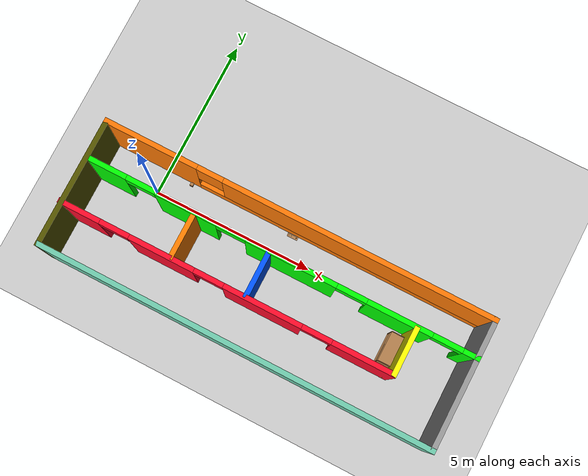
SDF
<sdf version="1.6">
 <world name="default">
  <light name="sun" type="directional">
   <pose>0 0 10 0 -0 0</pose>
   <diffuse>0.8 0.8 0.8 1</diffuse>
   <specular>0.2 0.2 0.2 1</specular>
   <attenuation>
    <range>1000</range>
    <constant>0.9</constant>
    <linear>0.01</linear>
    <quadratic>0.001</quadratic>
   </attenuation>
   <direction>-0.5 0.1 -0.9</direction>
  </light>
  <model name="ground_plane">
   <static>1</static>
   <link name="link">
    <collision name="collision">
     <geometry><plane><normal>0 0 1</normal><size>100 100</size></plane></geometry>
     <surface><friction><ode><mu>100</mu><mu2>50</mu2></ode></friction></surface>
    </collision>
    <visual name="visual">
     <cast_shadows>0</cast_shadows>
     <geometry><plane><normal>0 0 1</normal><size>100 100</size></plane></geometry>
     <material>
      <script><uri>file://media/materials/scripts/gazebo.material</uri><name>Gazebo/Grey</name></script>
     </material>
    </visual>
   </link>
  </model>
  <gravity>0 0 -9.8</gravity>
  <magnetic_field>6e-06 2.3e-05 -4.2e-05</magnetic_field>
  <atmosphere type="adiabatic"/>
  <physics name="default_physics" default="0" type="ode">
   <max_step_size>0.001</max_step_size>
   <real_time_factor>1</real_time_factor>
   <real_time_update_rate>1000</real_time_update_rate>
  </physics>
  <scene><ambient>0.4 0.4 0.4 1</ambient><background>0.7 0.7 0.7 1</background><shadows>1</shadows></scene>
  <spherical_coordinates>
   <surface_model>EARTH_WGS84</surface_model>
   <latitude_deg>0</latitude_deg>
   <longitude_deg>0</longitude_deg>
   <elevation>0</elevation>
   <heading_deg>0</heading_deg>
  </spherical_coordinates>
  <model name="Project4c">
   <pose>4.16008 -1.12488 0 0 -0 0</pose>
   <link name="Wall_0">
    <collision name="Wall_0_Collision">
     <geometry><box><size>4 0.15 2.5</size></box></geometry>
     <pose>0 0 1.25 0 -0 0</pose>
    </collision>
    <visual name="Wall_0_Visual">
     <pose>0 0 1.25 0 -0 0</pose>
     <geometry><box><size>4 0.15 2.5</size></box></geometry>
     <material>
      <script><uri>file://media/materials/scripts/gazebo.material</uri><name>Gazebo/Grey</name></script>
      <ambient>0.333333 0.333333 0 1</ambient>
     </material>
     <meta><layer>0</layer></meta>
    </visual>
    <pose>-5.91325 0 0 0 -0 1.5708</pose>
   </link>
   <link name="Wall_1">
    <pose>0.01175 1.925 0 0 -0 0</pose>
    <visual name="Wall_1_Visual_0">
     <pose>-4.55275 0 1.25 0 -0 0</pose>
     <geometry><box><size>2.8945 0.15 2.5</size></box></geometry>
     <material>
      <script><uri>file://media/materials/scripts/gazebo.material</uri><name>Gazebo/Grey</name></script>
      <ambient>0.996078 0.47451 0.0196078 1</ambient>
     </material>
     <meta><layer>0</layer></meta>
    </visual>
    <collision name="Wall_1_Collision_0">
     <geometry><box><size>2.8945 0.15 2.5</size></box></geometry>
     <pose>-4.55275 0 1.25 0 -0 0</pose>
    </collision>
    <visual name="Wall_1_Visual_1">
     <pose>1.44725 0 0.25 0 -0 0</pose>
     <geometry><box><size>9.1055 0.15 0.5</size></box></geometry>
     <material>
      <script><uri>file://media/materials/scripts/gazebo.material</uri><name>Gazebo/Grey</name></script>
      <ambient>0.996078 0.47451 0.0196078 1</ambient>
     </material>
     <meta><layer>0</layer></meta>
    </visual>
    <collision name="Wall_1_Collision_1">
     <geometry><box><size>9.1055 0.15 0.5</size></box></geometry>
     <pose>1.44725 0 0.25 0 -0 0</pose>
    </collision>
    <visual name="Wall_1_Visual_2">
     <pose>1.84725 0 1.5 0 -0 0</pose>
     <geometry><box><size>8.3055 0.15 2</size></box></geometry>
     <material>
      <script><uri>file://media/materials/scripts/gazebo.material</uri><name>Gazebo/Grey</name></script>
      <ambient>0.996078 0.47451 0.0196078 1</ambient>
     </material>
     <meta><layer>0</layer></meta>
    </visual>
    <collision name="Wall_1_Collision_2">
     <geometry><box><size>8.3055 0.15 2</size></box></geometry>
     <pose>1.84725 0 1.5 0 -0 0</pose>
    </collision>
    <visual name="Wall_1_Visual_3">
     <pose>-2.7055 0 1.9 0 -0 0</pose>
     <geometry><box><size>0.8 0.15 1.2</size></box></geometry>
     <material>
      <script><uri>file://media/materials/scripts/gazebo.material</uri><name>Gazebo/Grey</name></script>
      <ambient>0.996078 0.47451 0.0196078 1</ambient>
     </material>
     <meta><layer>0</layer></meta>
    </visual>
    <collision name="Wall_1_Collision_3">
     <geometry><box><size>0.8 0.15 1.2</size></box></geometry>
     <pose>-2.7055 0 1.9 0 -0 0</pose>
    </collision>
   </link>
   <link name="Wall_10">
    <collision name="Wall_10_Collision">
     <geometry><box><size>1.5 0.15 2.5</size></box></geometry>
     <pose>0 0 1.25 0 -0 0</pose>
    </collision>
    <visual name="Wall_10_Visual">
     <pose>0 0 1.25 0 -0 0</pose>
     <geometry><box><size>1.5 0.15 2.5</size></box></geometry>
     <material>
      <script><uri>file://media/materials/scripts/gazebo.material</uri><name>Gazebo/Grey</name></script>
      <ambient>1 0.501961 0 1</ambient>
     </material>
     <meta><layer>0</layer></meta>
    </visual>
    <pose>-2.56725 0.0995 0 0 0 -1.5708</pose>
   </link>
   <link name="Wall_12">
    <collision name="Wall_12_Collision">
     <geometry><box><size>1.5 0.15 2.5</size></box></geometry>
     <pose>0 0 1.25 0 -0 0</pose>
    </collision>
    <visual name="Wall_12_Visual">
     <pose>0 0 1.25 0 -0 0</pose>
     <geometry><box><size>1.5 0.15 2.5</size></box></geometry>
     <material>
      <script><uri>file://media/materials/scripts/gazebo.material</uri><name>Gazebo/Grey</name></script>
      <ambient>0 0.333333 1 1</ambient>
     </material>
     <meta><layer>0</layer></meta>
    </visual>
    <pose>-0.27875 0.111 0 0 0 -1.5708</pose>
   </link>
   <link name="Wall_2">
    <collision name="Wall_2_Collision">
     <geometry><box><size>4 0.15 2.5</size></box></geometry>
     <pose>0 0 1.25 0 -0 0</pose>
    </collision>
    <visual name="Wall_2_Visual">
     <pose>0 0 1.25 0 -0 0</pose>
     <geometry><box><size>4 0.15 2.5</size></box></geometry>
     <material>
      <script><uri>file://media/materials/scripts/gazebo.material</uri><name>Gazebo/Grey</name></script>
      <ambient>0 0 0 1</ambient>
     </material>
     <meta><layer>0</layer></meta>
    </visual>
    <pose>5.93675 0 0 0 0 -1.5708</pose>
   </link>
   <link name="Wall_3">
    <collision name="Wall_3_Collision">
     <geometry><box><size>12 0.15 2.5</size></box></geometry>
     <pose>0 0 1.25 0 -0 0</pose>
    </collision>
    <visual name="Wall_3_Visual">
     <pose>0 0 1.25 0 -0 0</pose>
     <geometry><box><size>12 0.15 2.5</size></box></geometry>
     <material>
      <script><uri>file://media/materials/scripts/gazebo.material</uri><name>Gazebo/Grey</name></script>
      <ambient>0.435294 0.796078 0.67451 1</ambient>
     </material>
     <meta><layer>0</layer></meta>
    </visual>
    <pose>0.01175 -1.925 0 0 -0 3.14159</pose>
   </link>
   <link name="Wall_5">
    <pose>0.01125 0.786 0 0 -0 0</pose>
    <visual name="Wall_5_Visual_0">
     <pose>-5.34225 0 1.25 0 -0 0</pose>
     <geometry><box><size>1.3155 0.15 2.5</size></box></geometry>
     <material>
      <script><uri>file://media/materials/scripts/gazebo.material</uri><name>Gazebo/Grey</name></script>
      <ambient>0 0.996078 0 1</ambient>
     </material>
     <meta><layer>0</layer></meta>
    </visual>
    <collision name="Wall_5_Collision_0">
     <geometry><box><size>1.3155 0.15 2.5</size></box></geometry>
     <pose>-5.34225 0 1.25 0 -0 0</pose>
    </collision>
    <visual name="Wall_5_Visual_1">
     <pose>-2.843 0 1.25 0 -0 0</pose>
     <geometry><box><size>1.883 0.15 2.5</size></box></geometry>
     <material>
      <script><uri>file://media/materials/scripts/gazebo.material</uri><name>Gazebo/Grey</name></script>
      <ambient>0 0.996078 0 1</ambient>
     </material>
     <meta><layer>0</layer></meta>
    </visual>
    <collision name="Wall_5_Collision_1">
     <geometry><box><size>1.883 0.15 2.5</size></box></geometry>
     <pose>-2.843 0 1.25 0 -0 0</pose>
    </collision>
    <visual name="Wall_5_Visual_2">
     <pose>0.377 0 1.25 0 -0 0</pose>
     <geometry><box><size>2.757 0.15 2.5</size></box></geometry>
     <material>
      <script><uri>file://media/materials/scripts/gazebo.material</uri><name>Gazebo/Grey</name></script>
      <ambient>0 0.996078 0 1</ambient>
     </material>
     <meta><layer>0</layer></meta>
    </visual>
    <collision name="Wall_5_Collision_2">
     <geometry><box><size>2.757 0.15 2.5</size></box></geometry>
     <pose>0.377 0 1.25 0 -0 0</pose>
    </collision>
    <visual name="Wall_5_Visual_3">
     <pose>3.6315 0 1.25 0 -0 0</pose>
     <geometry><box><size>1.952 0.15 2.5</size></box></geometry>
     <material>
      <script><uri>file://media/materials/scripts/gazebo.material</uri><name>Gazebo/Grey</name></script>
      <ambient>0 0.996078 0 1</ambient>
     </material>
     <meta><layer>0</layer></meta>
    </visual>
    <collision name="Wall_5_Collision_3">
     <geometry><box><size>1.952 0.15 2.5</size></box></geometry>
     <pose>3.6315 0 1.25 0 -0 0</pose>
    </collision>
    <visual name="Wall_5_Visual_4">
     <pose>5.75375 0 1.25 0 -0 0</pose>
     <geometry><box><size>0.4925 0.15 2.5</size></box></geometry>
     <material>
      <script><uri>file://media/materials/scripts/gazebo.material</uri><name>Gazebo/Grey</name></script>
      <ambient>0 0.996078 0 1</ambient>
     </material>
     <meta><layer>0</layer></meta>
    </visual>
    <collision name="Wall_5_Collision_4">
     <geometry><box><size>0.4925 0.15 2.5</size></box></geometry>
     <pose>5.75375 0 1.25 0 -0 0</pose>
    </collision>
    <visual name="Wall_5_Visual_5">
     <pose>-4.2345 0 2.25 0 -0 0</pose>
     <geometry><box><size>0.9 0.15 0.5</size></box></geometry>
     <material>
      <script><uri>file://media/materials/scripts/gazebo.material</uri><name>Gazebo/Grey</name></script>
      <ambient>0 0.996078 0 1</ambient>
     </material>
     <meta><layer>0</layer></meta>
    </visual>
    <collision name="Wall_5_Collision_5">
     <geometry><box><size>0.9 0.15 0.5</size></box></geometry>
     <pose>-4.2345 0 2.25 0 -0 0</pose>
    </collision>
    <visual name="Wall_5_Visual_6">
     <pose>-1.4515 0 2.25 0 -0 0</pose>
     <geometry><box><size>0.9 0.15 0.5</size></box></geometry>
     <material>
      <script><uri>file://media/materials/scripts/gazebo.material</uri><name>Gazebo/Grey</name></script>
      <ambient>0 0.996078 0 1</ambient>
     </material>
     <meta><layer>0</layer></meta>
    </visual>
    <collision name="Wall_5_Collision_6">
     <geometry><box><size>0.9 0.15 0.5</size></box></geometry>
     <pose>-1.4515 0 2.25 0 -0 0</pose>
    </collision>
    <visual name="Wall_5_Visual_7">
     <pose>2.2055 0 2.25 0 -0 0</pose>
     <geometry><box><size>0.9 0.15 0.5</size></box></geometry>
     <material>
      <script><uri>file://media/materials/scripts/gazebo.material</uri><name>Gazebo/Grey</name></script>
      <ambient>0 0.996078 0 1</ambient>
     </material>
     <meta><layer>0</layer></meta>
    </visual>
    <collision name="Wall_5_Collision_7">
     <geometry><box><size>0.9 0.15 0.5</size></box></geometry>
     <pose>2.2055 0 2.25 0 -0 0</pose>
    </collision>
    <visual name="Wall_5_Visual_8">
     <pose>5.0575 0 2.25 0 -0 0</pose>
     <geometry><box><size>0.9 0.15 0.5</size></box></geometry>
     <material>
      <script><uri>file://media/materials/scripts/gazebo.material</uri><name>Gazebo/Grey</name></script>
      <ambient>0 0.996078 0 1</ambient>
     </material>
     <meta><layer>0</layer></meta>
    </visual>
    <collision name="Wall_5_Collision_8">
     <geometry><box><size>0.9 0.15 0.5</size></box></geometry>
     <pose>5.0575 0 2.25 0 -0 0</pose>
    </collision>
   </link>
   <link name="Wall_7">
    <pose>-0.88675 -0.617 0 0 -0 0</pose>
    <visual name="Wall_7_Visual_0">
     <pose>-4.4845 0 1.25 0 -0 0</pose>
     <geometry><box><size>1.281 0.15 2.5</size></box></geometry>
     <material>
      <script><uri>file://media/materials/scripts/gazebo.material</uri><name>Gazebo/Grey</name></script>
      <ambient>0.996078 0.0392157 0.164706 1</ambient>
     </material>
     <meta><layer>0</layer></meta>
    </visual>
    <collision name="Wall_7_Collision_0">
     <geometry><box><size>1.281 0.15 2.5</size></box></geometry>
     <pose>-4.4845 0 1.25 0 -0 0</pose>
    </collision>
    <visual name="Wall_7_Visual_1">
     <pose>-1.95075 0 1.25 0 -0 0</pose>
     <geometry><box><size>1.9865 0.15 2.5</size></box></geometry>
     <material>
      <script><uri>file://media/materials/scripts/gazebo.material</uri><name>Gazebo/Grey</name></script>
      <ambient>0.996078 0.0392157 0.164706 1</ambient>
     </material>
     <meta><layer>0</layer></meta>
    </visual>
    <collision name="Wall_7_Collision_1">
     <geometry><box><size>1.9865 0.15 2.5</size></box></geometry>
     <pose>-1.95075 0 1.25 0 -0 0</pose>
    </collision>
    <visual name="Wall_7_Visual_2">
     <pose>1.1255 0 1.25 0 -0 0</pose>
     <geometry><box><size>2.366 0.15 2.5</size></box></geometry>
     <material>
      <script><uri>file://media/materials/scripts/gazebo.material</uri><name>Gazebo/Grey</name></script>
      <ambient>0.996078 0.0392157 0.164706 1</ambient>
     </material>
     <meta><layer>0</layer></meta>
    </visual>
    <collision name="Wall_7_Collision_2">
     <geometry><box><size>2.366 0.15 2.5</size></box></geometry>
     <pose>1.1255 0 1.25 0 -0 0</pose>
    </collision>
    <visual name="Wall_7_Visual_3">
     <pose>4.16675 0 1.25 0 -0 0</pose>
     <geometry><box><size>1.9165 0.15 2.5</size></box></geometry>
     <material>
      <script><uri>file://media/materials/scripts/gazebo.material</uri><name>Gazebo/Grey</name></script>
      <ambient>0.996078 0.0392157 0.164706 1</ambient>
     </material>
     <meta><layer>0</layer></meta>
    </visual>
    <collision name="Wall_7_Collision_3">
     <geometry><box><size>1.9165 0.15 2.5</size></box></geometry>
     <pose>4.16675 0 1.25 0 -0 0</pose>
    </collision>
    <visual name="Wall_7_Visual_4">
     <pose>-3.394 0 2.25 0 -0 0</pose>
     <geometry><box><size>0.9 0.15 0.5</size></box></geometry>
     <material>
      <script><uri>file://media/materials/scripts/gazebo.material</uri><name>Gazebo/Grey</name></script>
      <ambient>0.996078 0.0392157 0.164706 1</ambient>
     </material>
     <meta><layer>0</layer></meta>
    </visual>
    <collision name="Wall_7_Collision_4">
     <geometry><box><size>0.9 0.15 0.5</size></box></geometry>
     <pose>-3.394 0 2.25 0 -0 0</pose>
    </collision>
    <visual name="Wall_7_Visual_5">
     <pose>-0.5075 0 2.25 0 -0 0</pose>
     <geometry><box><size>0.9 0.15 0.5</size></box></geometry>
     <material>
      <script><uri>file://media/materials/scripts/gazebo.material</uri><name>Gazebo/Grey</name></script>
      <ambient>0.996078 0.0392157 0.164706 1</ambient>
     </material>
     <meta><layer>0</layer></meta>
    </visual>
    <collision name="Wall_7_Collision_5">
     <geometry><box><size>0.9 0.15 0.5</size></box></geometry>
     <pose>-0.5075 0 2.25 0 -0 0</pose>
    </collision>
    <visual name="Wall_7_Visual_6">
     <pose>2.7585 0 2.25 0 -0 0</pose>
     <geometry><box><size>0.9 0.15 0.5</size></box></geometry>
     <material>
      <script><uri>file://media/materials/scripts/gazebo.material</uri><name>Gazebo/Grey</name></script>
      <ambient>0.996078 0.0392157 0.164706 1</ambient>
     </material>
     <meta><layer>0</layer></meta>
    </visual>
    <collision name="Wall_7_Collision_6">
     <geometry><box><size>0.9 0.15 0.5</size></box></geometry>
     <pose>2.7585 0 2.25 0 -0 0</pose>
    </collision>
   </link>
   <link name="Wall_8">
    <collision name="Wall_8_Collision">
     <geometry><box><size>1.5 0.15 2.5</size></box></geometry>
     <pose>0 0 1.25 0 -0 0</pose>
    </collision>
    <visual name="Wall_8_Visual">
     <pose>0 0 1.25 0 -0 0</pose>
     <geometry><box><size>1.5 0.15 2.5</size></box></geometry>
     <material>
      <script><uri>file://media/materials/scripts/gazebo.material</uri><name>Gazebo/Grey</name></script>
      <ambient>1 1 0 1</ambient>
     </material>
     <meta><layer>0</layer></meta>
    </visual>
    <pose>4.16325 0.058 0 0 -0 1.5708</pose>
   </link>
   <static>1</static>
  </model>
  <model name="bookshelf">
   <static>1</static>
   <link name="link">
    <inertial><mass>1</mass></inertial>
    <collision name="back">
     <pose>0 0.005 0.6 0 -0 0</pose>
     <geometry><box><size>0.9 0.01 1.2</size></box></geometry>
    </collision>
    <visual name="visual1">
     <pose>0 0.005 0.6 0 -0 0</pose>
     <geometry><box><size>0.9 0.01 1.2</size></box></geometry>
     <material>
      <script><uri>file://media/materials/scripts/gazebo.material</uri><name>Gazebo/Wood</name></script>
     </material>
    </visual>
    <collision name="left_side">
     <pose>0.45 -0.195 0.6 0 -0 0</pose>
     <geometry><box><size>0.02 0.4 1.2</size></box></geometry>
    </collision>
    <visual name="visual2">
     <pose>0.45 -0.195 0.6 0 -0 0</pose>
     <geometry><box><size>0.02 0.4 1.2</size></box></geometry>
     <material>
      <script><uri>file://media/materials/scripts/gazebo.material</uri><name>Gazebo/Wood</name></script>
     </material>
    </visual>
    <collision name="right_side">
     <pose>-0.45 -0.195 0.6 0 -0 0</pose>
     <geometry><box><size>0.02 0.4 1.2</size></box></geometry>
    </collision>
    <visual name="visual3">
     <pose>-0.45 -0.195 0.6 0 -0 0</pose>
     <geometry><box><size>0.02 0.4 1.2</size></box></geometry>
     <material>
      <script><uri>file://media/materials/scripts/gazebo.material</uri><name>Gazebo/Wood</name></script>
     </material>
    </visual>
    <collision name="bottom">
     <pose>0 -0.195 0.03 0 -0 0</pose>
     <geometry><box><size>0.88 0.4 0.06</size></box></geometry>
    </collision>
    <visual name="visual4">
     <pose>0 -0.195 0.03 0 -0 0</pose>
     <geometry><box><size>0.88 0.4 0.06</size></box></geometry>
     <material>
      <script><uri>file://media/materials/scripts/gazebo.material</uri><name>Gazebo/Wood</name></script>
     </material>
    </visual>
    <collision name="top">
     <pose>0 -0.195 1.19 0 -0 0</pose>
     <geometry><box><size>0.88 0.4 0.02</size></box></geometry>
    </collision>
    <visual name="visual5">
     <pose>0 -0.195 1.19 0 -0 0</pose>
     <geometry><box><size>0.88 0.4 0.02</size></box></geometry>
     <material>
      <script><uri>file://media/materials/scripts/gazebo.material</uri><name>Gazebo/Wood</name></script>
     </material>
    </visual>
    <collision name="low_shelf">
     <pose>0 -0.195 0.43 0 -0 0</pose>
     <geometry><box><size>0.88 0.4 0.02</size></box></geometry>
    </collision>
    <visual name="visual6">
     <pose>0 -0.195 0.43 0 -0 0</pose>
     <geometry><box><size>0.88 0.4 0.02</size></box></geometry>
     <material>
      <script><uri>file://media/materials/scripts/gazebo.material</uri><name>Gazebo/Wood</name></script>
     </material>
    </visual>
    <collision name="high_shelf">
     <pose>0 -0.195 0.8 0 -0 0</pose>
     <geometry><box><size>0.88 0.4 0.02</size></box></geometry>
    </collision>
    <visual name="visual7">
     <pose>0 -0.195 0.8 0 -0 0</pose>
     <geometry><box><size>0.88 0.4 0.02</size></box></geometry>
     <material>
      <script><uri>file://media/materials/scripts/gazebo.material</uri><name>Gazebo/Wood</name></script>
     </material>
    </visual>
   </link>
   <pose>8.26226 -1.05343 0 0 0 -1.57073</pose>
  </model>
  <model name="my_ball">
   <link name="link_0">
    <inertial>
     <mass>1</mass>
     <inertia><ixx>0.1</ixx><ixy>0</ixy><ixz>0</ixz><iyy>0.1</iyy><iyz>0</iyz><izz>0.1</izz></inertia>
    </inertial>
    <visual name="visual">
     <geometry><sphere><radius>0.1</radius></sphere></geometry>
     <material>
      <lighting>1</lighting>
      <script><uri>file://media/materials/scripts/gazebo.material</uri><name>Gazebo/Grey</name></script>
      <ambient>1 1 1 1</ambient>
      <diffuse>1 1 1 1</diffuse>
      <specular>1 1 1 1</specular>
      <emissive>1 1 1 1</emissive>
      <shader type="vertex"><normal_map>__default__</normal_map></shader>
     </material>
    </visual>
    <collision name="collision">
     <geometry><sphere><radius>0.1</radius></sphere></geometry>
     <surface>
      <friction>
       <ode><mu>1</mu><mu2>1</mu2><fdir1>0 0 0</fdir1><slip1>0</slip1><slip2>0</slip2></ode>
       <torsional>
        <coefficient>1</coefficient>
        <patch_radius>0</patch_radius>
        <surface_radius>0</surface_radius>
        <use_patch_radius>1</use_patch_radius>
        <ode><slip>0</slip></ode>
       </torsional>
      </friction>
      <bounce><restitution_coefficient>0</restitution_coefficient><threshold>1e+06</threshold></bounce>
      <contact>
       <collide_without_contact>0</collide_without_contact>
       <collide_without_contact_bitmask>1</collide_without_contact_bitmask>
       <collide_bitmask>1</collide_bitmask>
       <ode>
        <soft_cfm>0</soft_cfm>
        <soft_erp>0.2</soft_erp>
        <kp>1e+13</kp>
        <kd>1</kd>
        <max_vel>0.01</max_vel>
        <min_depth>0</min_depth>
       </ode>
       <bullet>
        <split_impulse>1</split_impulse>
        <split_impulse_penetration_threshold>-0.01</split_impulse_penetration_threshold>
        <soft_cfm>0</soft_cfm>
        <soft_erp>0.2</soft_erp>
        <kp>1e+13</kp>
        <kd>1</kd>
       </bullet>
      </contact>
     </surface>
    </collision>
   </link>
   <static>0</static>
   <pose>7.33445 -0.141443 0.1 0 -0 0</pose>
  </model>
  <model name="wooden_peg_board">
   <link name="wooden_board::base">
    <pose>0 0 0.00523 0 -0 0</pose>
    <inertial>
     <mass>0.2765</mass>
     <inertia>
      <ixx>0.0025148</ixx>
      <ixy>0</ixy>
      <ixz>0</ixz>
      <iyy>0.00024037</iyy>
      <iyz>0</iyz>
      <izz>0.00275013</izz>
     </inertia>
    </inertial>
    <collision name="collision">
     <geometry><box><size>0.1016 0.3302 0.01046</size></box></geometry>
     <surface>
      <contact>
       <poissons_ratio>0.347</poissons_ratio>
       <elastic_modulus>8.8e+09</elastic_modulus>
       <ode><kp>100000</kp><kd>100</kd><max_vel>100</max_vel><min_depth>0.001</min_depth></ode>
      </contact>
      <friction>
       <torsional>
        <coefficient>1</coefficient>
        <use_patch_radius>0</use_patch_radius>
        <surface_radius>0.01</surface_radius>
       </torsional>
      </friction>
     </surface>
    </collision>
    <visual name="visual">
     <geometry><box><size>0.1016 0.3302 0.01046</size></box></geometry>
     <material>
      <script><uri>file://media/materials/scripts/gazebo.material</uri><name>Gazebo/Wood</name></script>
     </material>
    </visual>
    <visual name="tee_nut_1">
     <pose>0 -0.116 0 0 -0 0</pose>
     <geometry><cylinder><radius>0.00635</radius><length>0.0105646</length></cylinder></geometry>
     <material>
      <script><uri>file://media/materials/scripts/gazebo.material</uri><name>Gazebo/Grey</name></script>
     </material>
    </visual>
    <visual name="tee_nut_2">
     <pose>0 -0.038 0 0 -0 0</pose>
     <geometry><cylinder><radius>0.00635</radius><length>0.0105646</length></cylinder></geometry>
     <material>
      <script><uri>file://media/materials/scripts/gazebo.material</uri><name>Gazebo/Grey</name></script>
     </material>
    </visual>
    <visual name="tee_nut_3">
     <pose>0 0.038 0 0 -0 0</pose>
     <geometry><cylinder><radius>0.00635</radius><length>0.0105646</length></cylinder></geometry>
     <material>
      <script><uri>file://media/materials/scripts/gazebo.material</uri><name>Gazebo/Grey</name></script>
     </material>
    </visual>
    <visual name="tee_nut_4">
     <pose>0 0.116 0 0 -0 0</pose>
     <geometry><cylinder><radius>0.00635</radius><length>0.0105646</length></cylinder></geometry>
     <material>
      <script><uri>file://media/materials/scripts/gazebo.material</uri><name>Gazebo/Grey</name></script>
     </material>
    </visual>
   </link>
   <link name="peg::link">
    <pose>0 0.116 0.04 0 -0 0</pose>
    <inertial>
     <mass>0.0175</mass>
     <inertia>
      <ixx>9.74923e-06</ixx>
      <ixy>0</ixy>
      <ixz>0</ixz>
      <iyy>9.74923e-06</iyy>
      <iyz>0</iyz>
      <izz>8.31797e-07</izz>
     </inertia>
    </inertial>
    <collision name="collision">
     <geometry><cylinder><radius>0.00975</radius><length>0.08</length></cylinder></geometry>
     <surface>
      <contact>
       <poissons_ratio>0.347</poissons_ratio>
       <elastic_modulus>8.8e+09</elastic_modulus>
       <ode><kp>100000</kp><kd>100</kd><max_vel>100</max_vel><min_depth>0.001</min_depth></ode>
      </contact>
      <friction>
       <torsional>
        <coefficient>1</coefficient>
        <use_patch_radius>0</use_patch_radius>
        <surface_radius>0.01</surface_radius>
       </torsional>
      </friction>
     </surface>
    </collision>
    <visual name="visual">
     <geometry><cylinder><radius>0.00975</radius><length>0.08</length></cylinder></geometry>
     <material>
      <script><uri>file://media/materials/scripts/gazebo.material</uri><name>Gazebo/Wood</name></script>
     </material>
    </visual>
   </link>
   <joint name="board_peg" type="revolute">
    <parent>wooden_board::base</parent>
    <child>peg::link</child>
    <axis>
     <xyz>0 0 1</xyz>
     <limit><upper>0</upper><lower>0</lower></limit>
     <use_parent_model_frame>0</use_parent_model_frame>
     <dynamics><spring_reference>0</spring_reference><spring_stiffness>0</spring_stiffness></dynamics>
    </axis>
   </joint>
   <pose>4.1324 0.663871 -0.001004 1.3e-05 -0 -1.55029</pose>
  </model>
  <model name="wood_cube_10cm">
   <link name="link">
    <pose>0 0 0.05 0 -0 0</pose>
    <inertial>
     <mass>0.5167</mass>
     <inertia>
      <ixx>0.000861167</ixx>
      <ixy>0</ixy>
      <ixz>0</ixz>
      <iyy>0.000861167</iyy>
      <iyz>0</iyz>
      <izz>0.000861167</izz>
     </inertia>
    </inertial>
    <collision name="collision">
     <geometry><box><size>0.1 0.1 0.1</size></box></geometry>
     <surface>
      <contact>
       <poissons_ratio>0.347</poissons_ratio>
       <elastic_modulus>8.8e+09</elastic_modulus>
       <ode><kp>100000</kp><kd>100</kd><max_vel>100</max_vel><min_depth>0.001</min_depth></ode>
      </contact>
      <friction>
       <torsional>
        <coefficient>1</coefficient>
        <use_patch_radius>0</use_patch_radius>
        <surface_radius>0.01</surface_radius>
       </torsional>
      </friction>
     </surface>
    </collision>
    <visual name="visual">
     <geometry><box><size>0.1 0.1 0.1</size></box></geometry>
     <material>
      <script><uri>file://media/materials/scripts/gazebo.material</uri><name>Gazebo/Wood</name></script>
     </material>
    </visual>
   </link>
   <pose>0.780872 0.6714 -0.001013 0 -0 0</pose>
  </model>
 </world>
</sdf>
